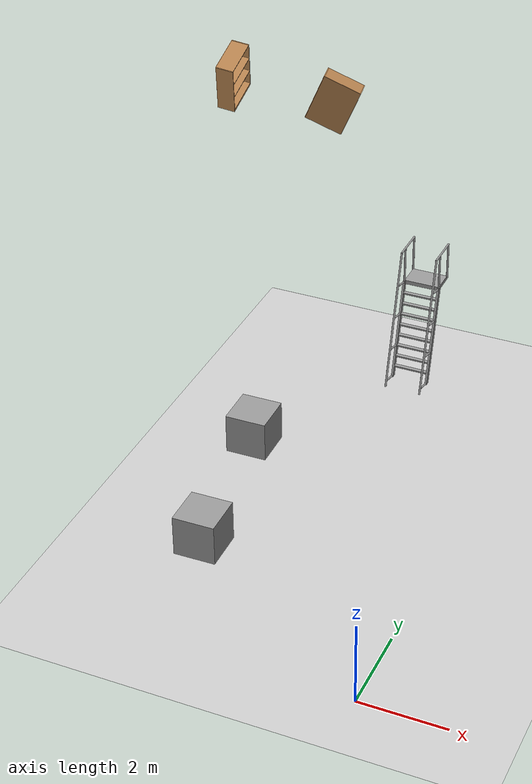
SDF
<sdf version="1.6">
 <world name="default">
  <model name="ground_plane">
   <static>1</static>
   <link name="link">
    <collision name="collision">
     <geometry><plane><normal>0 0 1</normal><size>100 100</size></plane></geometry>
     <surface><friction><ode><mu>100</mu><mu2>50</mu2></ode></friction></surface>
    </collision>
    <visual name="visual">
     <cast_shadows>0</cast_shadows>
     <geometry><plane><normal>0 0 1</normal><size>100 100</size></plane></geometry>
     <material>
      <script><uri>file://media/materials/scripts/gazebo.material</uri><name>Gazebo/Grey</name></script>
     </material>
    </visual>
   </link>
  </model>
  <model name="unit_box">
   <pose>-5.51535 7.0781 0.499995 0 -1e-05 0.015398</pose>
   <link name="link">
    <inertial>
     <mass>1</mass>
     <inertia>
      <ixx>0.166667</ixx>
      <ixy>0</ixy>
      <ixz>0</ixz>
      <iyy>0.166667</iyy>
      <iyz>0</iyz>
      <izz>0.166667</izz>
     </inertia>
    </inertial>
    <collision name="collision"><geometry><box><size>1 1 1</size></box></geometry></collision>
    <visual name="visual">
     <geometry><box><size>1 1 1</size></box></geometry>
     <material>
      <script><name>Gazebo/Grey</name><uri>file://media/materials/scripts/gazebo.material</uri></script>
     </material>
    </visual>
   </link>
  </model>
  <model name="unit_box_0">
   <pose>-4.94193 3.18793 0.5 0 -0 0.015659</pose>
   <link name="unit_box_0::link">
    <inertial>
     <mass>1</mass>
     <inertia>
      <ixx>0.166667</ixx>
      <ixy>0</ixy>
      <ixz>0</ixz>
      <iyy>0.166667</iyy>
      <iyz>0</iyz>
      <izz>0.166667</izz>
     </inertia>
    </inertial>
    <collision name="collision"><geometry><box><size>1 1 1</size></box></geometry></collision>
    <visual name="visual">
     <geometry><box><size>1 1 1</size></box></geometry>
     <material>
      <script><name>Gazebo/Grey</name><uri>file://media/materials/scripts/gazebo.material</uri></script>
     </material>
    </visual>
    <enable_wind>1</enable_wind>
    <kinematic>1</kinematic>
   </link>
  </model>
  <model name="ladder_75deg_2rails">
   <static>1</static>
   <link name="step0">
    <pose>0 0.071453 0.266667 0 -0 0</pose>
    <inertial>
     <mass>9.75482</mass>
     <inertia>
      <ixx>0.00957124</ixx>
      <iyy>0.65963</iyy>
      <izz>0.666842</izz>
      <ixy>0</ixy>
      <ixz>0</ixz>
      <iyz>0</iyz>
     </inertia>
    </inertial>
    <collision name="collision"><geometry><box><size>0.9 0.1016 0.0381</size></box></geometry></collision>
    <visual name="visual">
     <geometry><box><size>0.9 0.1016 0.0381</size></box></geometry>
     <material>
      <script><uri>file://media/materials/scripts/gazebo.material</uri><name>Gazebo/Grey</name></script>
     </material>
    </visual>
   </link>
   <link name="step1">
    <pose>0 0.142906 0.533333 0 -0 0</pose>
    <inertial>
     <mass>9.75482</mass>
     <inertia>
      <ixx>0.00957124</ixx>
      <iyy>0.65963</iyy>
      <izz>0.666842</izz>
      <ixy>0</ixy>
      <ixz>0</ixz>
      <iyz>0</iyz>
     </inertia>
    </inertial>
    <collision name="collision"><geometry><box><size>0.9 0.1016 0.0381</size></box></geometry></collision>
    <visual name="visual">
     <geometry><box><size>0.9 0.1016 0.0381</size></box></geometry>
     <material>
      <script><uri>file://media/materials/scripts/gazebo.material</uri><name>Gazebo/Grey</name></script>
     </material>
    </visual>
   </link>
   <link name="step2">
    <pose>0 0.214359 0.8 0 -0 0</pose>
    <inertial>
     <mass>9.75482</mass>
     <inertia>
      <ixx>0.00957124</ixx>
      <iyy>0.65963</iyy>
      <izz>0.666842</izz>
      <ixy>0</ixy>
      <ixz>0</ixz>
      <iyz>0</iyz>
     </inertia>
    </inertial>
    <collision name="collision"><geometry><box><size>0.9 0.1016 0.0381</size></box></geometry></collision>
    <visual name="visual">
     <geometry><box><size>0.9 0.1016 0.0381</size></box></geometry>
     <material>
      <script><uri>file://media/materials/scripts/gazebo.material</uri><name>Gazebo/Grey</name></script>
     </material>
    </visual>
   </link>
   <link name="step3">
    <pose>0 0.285812 1.06667 0 -0 0</pose>
    <inertial>
     <mass>9.75482</mass>
     <inertia>
      <ixx>0.00957124</ixx>
      <iyy>0.65963</iyy>
      <izz>0.666842</izz>
      <ixy>0</ixy>
      <ixz>0</ixz>
      <iyz>0</iyz>
     </inertia>
    </inertial>
    <collision name="collision"><geometry><box><size>0.9 0.1016 0.0381</size></box></geometry></collision>
    <visual name="visual">
     <geometry><box><size>0.9 0.1016 0.0381</size></box></geometry>
     <material>
      <script><uri>file://media/materials/scripts/gazebo.material</uri><name>Gazebo/Grey</name></script>
     </material>
    </visual>
   </link>
   <link name="step4">
    <pose>0 0.357266 1.33333 0 -0 0</pose>
    <inertial>
     <mass>9.75482</mass>
     <inertia>
      <ixx>0.00957124</ixx>
      <iyy>0.65963</iyy>
      <izz>0.666842</izz>
      <ixy>0</ixy>
      <ixz>0</ixz>
      <iyz>0</iyz>
     </inertia>
    </inertial>
    <collision name="collision"><geometry><box><size>0.9 0.1016 0.0381</size></box></geometry></collision>
    <visual name="visual">
     <geometry><box><size>0.9 0.1016 0.0381</size></box></geometry>
     <material>
      <script><uri>file://media/materials/scripts/gazebo.material</uri><name>Gazebo/Grey</name></script>
     </material>
    </visual>
   </link>
   <link name="step5">
    <pose>0 0.428719 1.6 0 -0 0</pose>
    <inertial>
     <mass>9.75482</mass>
     <inertia>
      <ixx>0.00957124</ixx>
      <iyy>0.65963</iyy>
      <izz>0.666842</izz>
      <ixy>0</ixy>
      <ixz>0</ixz>
      <iyz>0</iyz>
     </inertia>
    </inertial>
    <collision name="collision"><geometry><box><size>0.9 0.1016 0.0381</size></box></geometry></collision>
    <visual name="visual">
     <geometry><box><size>0.9 0.1016 0.0381</size></box></geometry>
     <material>
      <script><uri>file://media/materials/scripts/gazebo.material</uri><name>Gazebo/Grey</name></script>
     </material>
    </visual>
   </link>
   <link name="step6">
    <pose>0 0.500172 1.86667 0 -0 0</pose>
    <inertial>
     <mass>9.75482</mass>
     <inertia>
      <ixx>0.00957124</ixx>
      <iyy>0.65963</iyy>
      <izz>0.666842</izz>
      <ixy>0</ixy>
      <ixz>0</ixz>
      <iyz>0</iyz>
     </inertia>
    </inertial>
    <collision name="collision"><geometry><box><size>0.9 0.1016 0.0381</size></box></geometry></collision>
    <visual name="visual">
     <geometry><box><size>0.9 0.1016 0.0381</size></box></geometry>
     <material>
      <script><uri>file://media/materials/scripts/gazebo.material</uri><name>Gazebo/Grey</name></script>
     </material>
    </visual>
   </link>
   <link name="step7">
    <pose>0 0.571625 2.13333 0 -0 0</pose>
    <inertial>
     <mass>9.75482</mass>
     <inertia>
      <ixx>0.00957124</ixx>
      <iyy>0.65963</iyy>
      <izz>0.666842</izz>
      <ixy>0</ixy>
      <ixz>0</ixz>
      <iyz>0</iyz>
     </inertia>
    </inertial>
    <collision name="collision"><geometry><box><size>0.9 0.1016 0.0381</size></box></geometry></collision>
    <visual name="visual">
     <geometry><box><size>0.9 0.1016 0.0381</size></box></geometry>
     <material>
      <script><uri>file://media/materials/scripts/gazebo.material</uri><name>Gazebo/Grey</name></script>
     </material>
    </visual>
   </link>
   <link name="landing">
    <pose>0 0.943078 2.4 0 -0 0</pose>
    <inertial>
     <mass>57.6072</mass>
     <inertia><ixx>1.73518</ixx><iyy>3.89545</iyy><izz>5.6167</izz><ixy>0</ixy><ixz>0</ixz><iyz>0</iyz></inertia>
    </inertial>
    <collision name="collision"><geometry><box><size>0.9 0.6 0.1016</size></box></geometry></collision>
    <visual name="visual">
     <geometry><box><size>0.9 0.6 0.1016</size></box></geometry>
     <material>
      <script><uri>file://media/materials/scripts/gazebo.material</uri><name>Gazebo/Grey</name></script>
     </material>
    </visual>
   </link>
   <link name="left_side_wall">
    <pose>-0.45 0.321539 1.2 1.309 -0 0</pose>
    <collision name="collision"><geometry><box><size>0.0508 2.56466 0.13</size></box></geometry></collision>
    <visual name="visual">
     <geometry><box><size>0.0508 2.56466 0.13</size></box></geometry>
     <material>
      <script><uri>file://media/materials/scripts/gazebo.material</uri><name>Gazebo/Grey</name></script>
     </material>
    </visual>
   </link>
   <link name="right_side_wall">
    <pose>0.45 0.321539 1.2 1.309 -0 0</pose>
    <collision name="collision"><geometry><box><size>0.0508 2.56466 0.13</size></box></geometry></collision>
    <visual name="visual">
     <geometry><box><size>0.0508 2.56466 0.13</size></box></geometry>
     <material>
      <script><uri>file://media/materials/scripts/gazebo.material</uri><name>Gazebo/Grey</name></script>
     </material>
    </visual>
   </link>
   <link name="left_railing_long">
    <pose>-0.45 -0.053461 1.66651 -0.261799 0 0</pose>
    <collision name="collision">
     <geometry><cylinder><radius>0.02413</radius><length>3.51529</length></cylinder></geometry>
    </collision>
    <visual name="visual">
     <geometry><cylinder><radius>0.02413</radius><length>3.51529</length></cylinder></geometry>
     <material>
      <script><uri>file://media/materials/scripts/gazebo.material</uri><name>Gazebo/Grey</name></script>
     </material>
    </visual>
   </link>
   <link name="left_railing_upright0">
    <pose>-0.45 -0.210089 0.056293 1.309 -0 0</pose>
    <collision name="collision">
     <geometry><cylinder><radius>0.02413</radius><length>0.482963</length></cylinder></geometry>
    </collision>
    <visual name="visual">
     <geometry><cylinder><radius>0.02413</radius><length>0.482963</length></cylinder></geometry>
     <material>
      <script><uri>file://media/materials/scripts/gazebo.material</uri><name>Gazebo/Grey</name></script>
     </material>
    </visual>
   </link>
   <link name="left_railing_upright1">
    <pose>-0.45 0.00427 0.856293 1.309 -0 0</pose>
    <collision name="collision">
     <geometry><cylinder><radius>0.02413</radius><length>0.482963</length></cylinder></geometry>
    </collision>
    <visual name="visual">
     <geometry><cylinder><radius>0.02413</radius><length>0.482963</length></cylinder></geometry>
     <material>
      <script><uri>file://media/materials/scripts/gazebo.material</uri><name>Gazebo/Grey</name></script>
     </material>
    </visual>
   </link>
   <link name="left_railing_upright2">
    <pose>-0.45 0.21863 1.65629 1.309 -0 0</pose>
    <collision name="collision">
     <geometry><cylinder><radius>0.02413</radius><length>0.482963</length></cylinder></geometry>
    </collision>
    <visual name="visual">
     <geometry><cylinder><radius>0.02413</radius><length>0.482963</length></cylinder></geometry>
     <material>
      <script><uri>file://media/materials/scripts/gazebo.material</uri><name>Gazebo/Grey</name></script>
     </material>
    </visual>
   </link>
   <link name="left_railing_upright3">
    <pose>-0.45 0.432989 2.45629 1.309 -0 0</pose>
    <collision name="collision">
     <geometry><cylinder><radius>0.02413</radius><length>0.482963</length></cylinder></geometry>
    </collision>
    <visual name="visual">
     <geometry><cylinder><radius>0.02413</radius><length>0.482963</length></cylinder></geometry>
     <material>
      <script><uri>file://media/materials/scripts/gazebo.material</uri><name>Gazebo/Grey</name></script>
     </material>
    </visual>
   </link>
   <link name="left_railing_landing_top">
    <pose>-0.45 0.818078 3.35714 1.5708 -0 0</pose>
    <collision name="collision">
     <geometry><cylinder><radius>0.02413</radius><length>0.87413</length></cylinder></geometry>
    </collision>
    <visual name="visual">
     <geometry><cylinder><radius>0.02413</radius><length>0.87413</length></cylinder></geometry>
     <material>
      <script><uri>file://media/materials/scripts/gazebo.material</uri><name>Gazebo/Grey</name></script>
     </material>
    </visual>
   </link>
   <link name="left_railing_landing_upright_0">
    <pose>-0.45 0.643078 2.86651 0 -0 0</pose>
    <collision name="collision">
     <geometry><cylinder><radius>0.02413</radius><length>0.933013</length></cylinder></geometry>
    </collision>
    <visual name="visual">
     <geometry><cylinder><radius>0.02413</radius><length>0.933013</length></cylinder></geometry>
     <material>
      <script><uri>file://media/materials/scripts/gazebo.material</uri><name>Gazebo/Grey</name></script>
     </material>
    </visual>
   </link>
   <link name="left_railing_landing_upright_1">
    <pose>-0.45 1.24308 2.86651 0 -0 0</pose>
    <collision name="collision">
     <geometry><cylinder><radius>0.02413</radius><length>0.933013</length></cylinder></geometry>
    </collision>
    <visual name="visual">
     <geometry><cylinder><radius>0.02413</radius><length>0.933013</length></cylinder></geometry>
     <material>
      <script><uri>file://media/materials/scripts/gazebo.material</uri><name>Gazebo/Grey</name></script>
     </material>
    </visual>
   </link>
   <link name="right_railing_long">
    <pose>0.45 -0.053461 1.66651 -0.261799 0 0</pose>
    <collision name="collision">
     <geometry><cylinder><radius>0.02413</radius><length>3.51529</length></cylinder></geometry>
    </collision>
    <visual name="visual">
     <geometry><cylinder><radius>0.02413</radius><length>3.51529</length></cylinder></geometry>
     <material>
      <script><uri>file://media/materials/scripts/gazebo.material</uri><name>Gazebo/Grey</name></script>
     </material>
    </visual>
   </link>
   <link name="right_railing_upright0">
    <pose>0.45 -0.210089 0.056293 1.309 -0 0</pose>
    <collision name="collision">
     <geometry><cylinder><radius>0.02413</radius><length>0.482963</length></cylinder></geometry>
    </collision>
    <visual name="visual">
     <geometry><cylinder><radius>0.02413</radius><length>0.482963</length></cylinder></geometry>
     <material>
      <script><uri>file://media/materials/scripts/gazebo.material</uri><name>Gazebo/Grey</name></script>
     </material>
    </visual>
   </link>
   <link name="right_railing_upright1">
    <pose>0.45 0.00427 0.856293 1.309 -0 0</pose>
    <collision name="collision">
     <geometry><cylinder><radius>0.02413</radius><length>0.482963</length></cylinder></geometry>
    </collision>
    <visual name="visual">
     <geometry><cylinder><radius>0.02413</radius><length>0.482963</length></cylinder></geometry>
     <material>
      <script><uri>file://media/materials/scripts/gazebo.material</uri><name>Gazebo/Grey</name></script>
     </material>
    </visual>
   </link>
   <link name="right_railing_upright2">
    <pose>0.45 0.21863 1.65629 1.309 -0 0</pose>
    <collision name="collision">
     <geometry><cylinder><radius>0.02413</radius><length>0.482963</length></cylinder></geometry>
    </collision>
    <visual name="visual">
     <geometry><cylinder><radius>0.02413</radius><length>0.482963</length></cylinder></geometry>
     <material>
      <script><uri>file://media/materials/scripts/gazebo.material</uri><name>Gazebo/Grey</name></script>
     </material>
    </visual>
   </link>
   <link name="right_railing_upright3">
    <pose>0.45 0.432989 2.45629 1.309 -0 0</pose>
    <collision name="collision">
     <geometry><cylinder><radius>0.02413</radius><length>0.482963</length></cylinder></geometry>
    </collision>
    <visual name="visual">
     <geometry><cylinder><radius>0.02413</radius><length>0.482963</length></cylinder></geometry>
     <material>
      <script><uri>file://media/materials/scripts/gazebo.material</uri><name>Gazebo/Grey</name></script>
     </material>
    </visual>
   </link>
   <link name="right_railing_landing_top">
    <pose>0.45 0.818078 3.35714 1.5708 -0 0</pose>
    <collision name="collision">
     <geometry><cylinder><radius>0.02413</radius><length>0.87413</length></cylinder></geometry>
    </collision>
    <visual name="visual">
     <geometry><cylinder><radius>0.02413</radius><length>0.87413</length></cylinder></geometry>
     <material>
      <script><uri>file://media/materials/scripts/gazebo.material</uri><name>Gazebo/Grey</name></script>
     </material>
    </visual>
   </link>
   <link name="right_railing_landing_upright_0">
    <pose>0.45 0.643078 2.86651 0 -0 0</pose>
    <collision name="collision">
     <geometry><cylinder><radius>0.02413</radius><length>0.933013</length></cylinder></geometry>
    </collision>
    <visual name="visual">
     <geometry><cylinder><radius>0.02413</radius><length>0.933013</length></cylinder></geometry>
     <material>
      <script><uri>file://media/materials/scripts/gazebo.material</uri><name>Gazebo/Grey</name></script>
     </material>
    </visual>
   </link>
   <link name="right_railing_landing_upright_1">
    <pose>0.45 1.24308 2.86651 0 -0 0</pose>
    <collision name="collision">
     <geometry><cylinder><radius>0.02413</radius><length>0.933013</length></cylinder></geometry>
    </collision>
    <visual name="visual">
     <geometry><cylinder><radius>0.02413</radius><length>0.933013</length></cylinder></geometry>
     <material>
      <script><uri>file://media/materials/scripts/gazebo.material</uri><name>Gazebo/Grey</name></script>
     </material>
    </visual>
   </link>
   <pose>-3.08313 11.0991 0 0 -0 0</pose>
  </model>
  <model name="bookshelf_0_clone_1_clone_2_clone_2_clone_3">
   <static>1</static>
   <link name="link">
    <inertial><mass>1</mass></inertial>
    <collision name="back">
     <pose>0 0.005 0.6 0 -0 0</pose>
     <geometry><box><size>0.9 0.01 1.2</size></box></geometry>
    </collision>
    <visual name="visual1">
     <pose>0 0.005 0.6 0 -0 0</pose>
     <geometry><box><size>0.9 0.01 1.2</size></box></geometry>
     <material>
      <script><uri>file://media/materials/scripts/gazebo.material</uri><name>Gazebo/Wood</name></script>
     </material>
    </visual>
    <collision name="left_side">
     <pose>0.45 -0.195 0.6 0 -0 0</pose>
     <geometry><box><size>0.02 0.4 1.2</size></box></geometry>
    </collision>
    <visual name="visual2">
     <pose>0.45 -0.195 0.6 0 -0 0</pose>
     <geometry><box><size>0.02 0.4 1.2</size></box></geometry>
     <material>
      <script><uri>file://media/materials/scripts/gazebo.material</uri><name>Gazebo/Wood</name></script>
     </material>
    </visual>
    <collision name="right_side">
     <pose>-0.45 -0.195 0.6 0 -0 0</pose>
     <geometry><box><size>0.02 0.4 1.2</size></box></geometry>
    </collision>
    <visual name="visual3">
     <pose>-0.45 -0.195 0.6 0 -0 0</pose>
     <geometry><box><size>0.02 0.4 1.2</size></box></geometry>
     <material>
      <script><uri>file://media/materials/scripts/gazebo.material</uri><name>Gazebo/Wood</name></script>
     </material>
    </visual>
    <collision name="bottom">
     <pose>0 -0.195 0.03 0 -0 0</pose>
     <geometry><box><size>0.88 0.4 0.06</size></box></geometry>
    </collision>
    <visual name="visual4">
     <pose>0 -0.195 0.03 0 -0 0</pose>
     <geometry><box><size>0.88 0.4 0.06</size></box></geometry>
     <material>
      <script><uri>file://media/materials/scripts/gazebo.material</uri><name>Gazebo/Wood</name></script>
     </material>
    </visual>
    <collision name="top">
     <pose>0 -0.195 1.19 0 -0 0</pose>
     <geometry><box><size>0.88 0.4 0.02</size></box></geometry>
    </collision>
    <visual name="visual5">
     <pose>0 -0.195 1.19 0 -0 0</pose>
     <geometry><box><size>0.88 0.4 0.02</size></box></geometry>
     <material>
      <script><uri>file://media/materials/scripts/gazebo.material</uri><name>Gazebo/Wood</name></script>
     </material>
    </visual>
    <collision name="low_shelf">
     <pose>0 -0.195 0.43 0 -0 0</pose>
     <geometry><box><size>0.88 0.4 0.02</size></box></geometry>
    </collision>
    <visual name="visual6">
     <pose>0 -0.195 0.43 0 -0 0</pose>
     <geometry><box><size>0.88 0.4 0.02</size></box></geometry>
     <material>
      <script><uri>file://media/materials/scripts/gazebo.material</uri><name>Gazebo/Wood</name></script>
     </material>
    </visual>
    <collision name="high_shelf">
     <pose>0 -0.195 0.8 0 -0 0</pose>
     <geometry><box><size>0.88 0.4 0.02</size></box></geometry>
    </collision>
    <visual name="visual7">
     <pose>0 -0.195 0.8 0 -0 0</pose>
     <geometry><box><size>0.88 0.4 0.02</size></box></geometry>
     <material>
      <script><uri>file://media/materials/scripts/gazebo.material</uri><name>Gazebo/Wood</name></script>
     </material>
    </visual>
   </link>
   <pose>-6.67344 8.47593 8.36332 0.126952 -0.31446 1.5878</pose>
  </model>
  <model name="bookshelf_2_clone_clone">
   <static>1</static>
   <link name="link">
    <inertial><mass>1</mass></inertial>
    <collision name="back">
     <pose>0 0.005 0.6 0 -0 0</pose>
     <geometry><box><size>0.9 0.01 1.2</size></box></geometry>
    </collision>
    <visual name="visual1">
     <pose>0 0.005 0.6 0 -0 0</pose>
     <geometry><box><size>0.9 0.01 1.2</size></box></geometry>
     <material>
      <script><uri>file://media/materials/scripts/gazebo.material</uri><name>Gazebo/Wood</name></script>
     </material>
    </visual>
    <collision name="left_side">
     <pose>0.45 -0.195 0.6 0 -0 0</pose>
     <geometry><box><size>0.02 0.4 1.2</size></box></geometry>
    </collision>
    <visual name="visual2">
     <pose>0.45 -0.195 0.6 0 -0 0</pose>
     <geometry><box><size>0.02 0.4 1.2</size></box></geometry>
     <material>
      <script><uri>file://media/materials/scripts/gazebo.material</uri><name>Gazebo/Wood</name></script>
     </material>
    </visual>
    <collision name="right_side">
     <pose>-0.45 -0.195 0.6 0 -0 0</pose>
     <geometry><box><size>0.02 0.4 1.2</size></box></geometry>
    </collision>
    <visual name="visual3">
     <pose>-0.45 -0.195 0.6 0 -0 0</pose>
     <geometry><box><size>0.02 0.4 1.2</size></box></geometry>
     <material>
      <script><uri>file://media/materials/scripts/gazebo.material</uri><name>Gazebo/Wood</name></script>
     </material>
    </visual>
    <collision name="bottom">
     <pose>0 -0.195 0.03 0 -0 0</pose>
     <geometry><box><size>0.88 0.4 0.06</size></box></geometry>
    </collision>
    <visual name="visual4">
     <pose>0 -0.195 0.03 0 -0 0</pose>
     <geometry><box><size>0.88 0.4 0.06</size></box></geometry>
     <material>
      <script><uri>file://media/materials/scripts/gazebo.material</uri><name>Gazebo/Wood</name></script>
     </material>
    </visual>
    <collision name="top">
     <pose>0 -0.195 1.19 0 -0 0</pose>
     <geometry><box><size>0.88 0.4 0.02</size></box></geometry>
    </collision>
    <visual name="visual5">
     <pose>0 -0.195 1.19 0 -0 0</pose>
     <geometry><box><size>0.88 0.4 0.02</size></box></geometry>
     <material>
      <script><uri>file://media/materials/scripts/gazebo.material</uri><name>Gazebo/Wood</name></script>
     </material>
    </visual>
    <collision name="low_shelf">
     <pose>0 -0.195 0.43 0 -0 0</pose>
     <geometry><box><size>0.88 0.4 0.02</size></box></geometry>
    </collision>
    <visual name="visual6">
     <pose>0 -0.195 0.43 0 -0 0</pose>
     <geometry><box><size>0.88 0.4 0.02</size></box></geometry>
     <material>
      <script><uri>file://media/materials/scripts/gazebo.material</uri><name>Gazebo/Wood</name></script>
     </material>
    </visual>
    <collision name="high_shelf">
     <pose>0 -0.195 0.8 0 -0 0</pose>
     <geometry><box><size>0.88 0.4 0.02</size></box></geometry>
    </collision>
    <visual name="visual7">
     <pose>0 -0.195 0.8 0 -0 0</pose>
     <geometry><box><size>0.88 0.4 0.02</size></box></geometry>
     <material>
      <script><uri>file://media/materials/scripts/gazebo.material</uri><name>Gazebo/Wood</name></script>
     </material>
    </visual>
   </link>
   <pose>-4.93646 9.87156 7.27061 -0.077915 -0.400957 -2.94416</pose>
  </model>
 </world>
</sdf>
